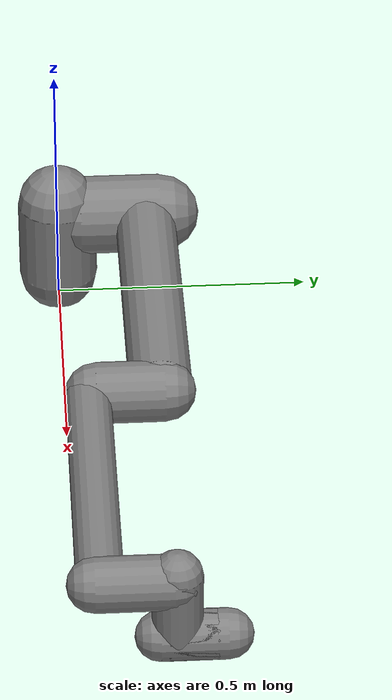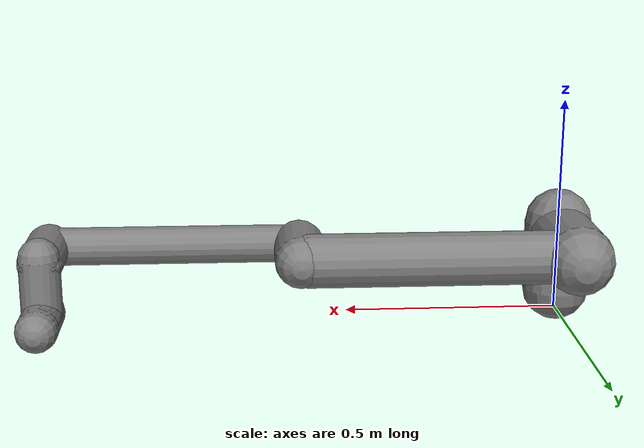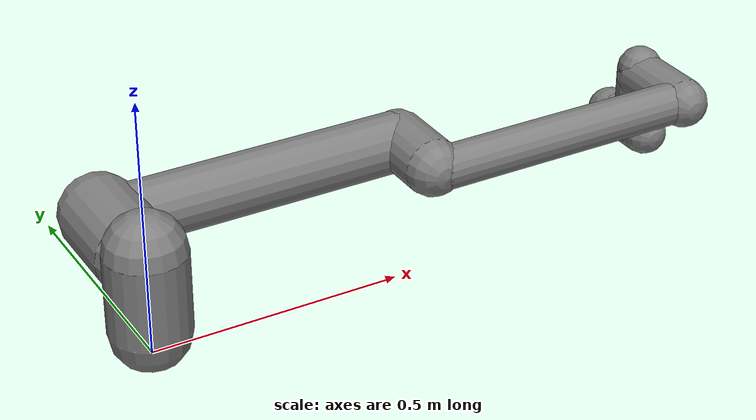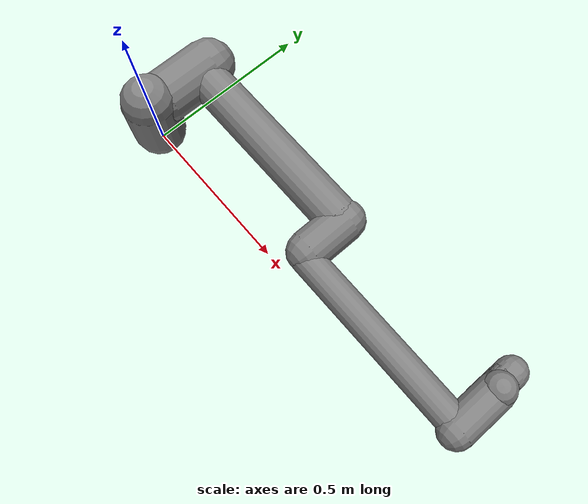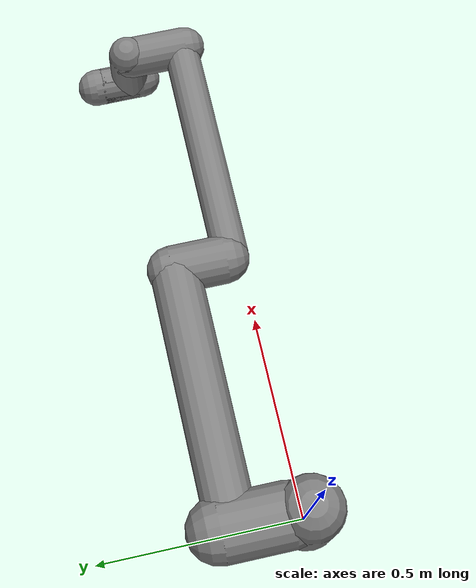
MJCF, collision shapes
<mujoco model="ur10e">
  <compiler angle="radian" eulerseq="xyz" meshdir="../universal_robots_ur10e/assets" autolimits="true"/>
  <option integrator="implicitfast"/>

  <!-- Default settings -->
  <default>
    <default class="ur10e">
      <material specular="0.5" shininess="0.25"/>
      <joint axis="0 1 0" range="-6.28319 6.28319" armature="0.1"/>
      <position ctrlrange="-6.2831 6.2831"/>
      <general biastype="affine" ctrlrange="-6.2831 6.2831" gainprm="5000" biasprm="0 -5000 -500"/>

      <default class="size4">
        <joint damping="10"/>
        <general forcerange="-330 330"/>
      </default>

      <default class="size3">
        <joint damping="5"/>
        <general forcerange="-150 150"/>
        <default class="size3_limited">
          <joint range="-3.1415 3.1415"/>
          <general ctrlrange="-3.1415 3.1415"/>
        </default>
      </default>

      <default class="size2">
        <joint damping="2"/>
        <general forcerange="-56 56"/>
      </default>

      <default class="visual">
        <geom type="mesh" contype="0" conaffinity="0" group="2"/>
      </default>

      <!-- Collision geometry -->
      <default class="collision">
        <geom type="capsule" group="3"/>
      </default>

      <!-- End-effector collision -->
      <default class="eef_collision">
        <geom type="capsule" group="3"/>
      </default>

      <site size="0.001" rgba="0.5 0.5 0.5 0.3" group="4"/>
    </default>
  </default>

  <asset>
    <material class="ur10e" name="black" rgba="0.033 0.033 0.033 1"/>
    <material class="ur10e" name="jointgray" rgba="0.278 0.278 0.278 1"/>
    <material class="ur10e" name="linkgray" rgba="0.82 0.82 0.82 1"/>
    <material class="ur10e" name="urblue" rgba="0.49 0.678 0.8 1"/>

    <!-- UR10 meshes -->
    <mesh file="base_0.obj"/>
    <mesh file="base_1.obj"/>
    <mesh file="shoulder_0.obj"/>
    <mesh file="shoulder_1.obj"/>
    <mesh file="shoulder_2.obj"/>
    <mesh file="upperarm_0.obj"/>
    <mesh file="upperarm_1.obj"/>
    <mesh file="upperarm_2.obj"/>
    <mesh file="upperarm_3.obj"/>
    <mesh file="forearm_0.obj"/>
    <mesh file="forearm_1.obj"/>
    <mesh file="forearm_2.obj"/>
    <mesh file="forearm_3.obj"/>
    <mesh file="wrist1_0.obj"/>
    <mesh file="wrist1_1.obj"/>
    <mesh file="wrist1_2.obj"/>
    <mesh file="wrist2_0.obj"/>
    <mesh file="wrist2_1.obj"/>
    <mesh file="wrist2_2.obj"/>
    <mesh file="wrist3.obj"/>
  </asset>

<!-- ================= UR10 Kinematic Chain ================= -->
  <worldbody>
    <light name="spotlight" mode="targetbodycom" target="wrist_2_link" pos="0 -1 2"/>

    <body name="base" childclass="ur10e">
      <inertial mass="4.0" pos="0 0 0" diaginertia="0.0061063308908 0.0061063308908 0.01125"/>
      <geom mesh="base_0" material="black" class="visual"/>
      <geom mesh="base_1" material="jointgray" class="visual"/>

      <!-- pos="0 0 0.181" means it is attached in Z-Axis relative to the Base center-->
      <body name="shoulder_link" pos="0 0 0.181">
        <inertial pos="0 1 0" mass="7.778" diaginertia="0.0314743 0.0314743 0.0218756"/>
        <joint name="shoulder_pan_joint" class="size4" axis="0 0 1"/>
        <geom mesh="shoulder_0" material="urblue" class="visual"/>
        <geom mesh="shoulder_1" material="black" class="visual"/>
        <geom mesh="shoulder_2" material="jointgray" class="visual"/>
        <geom class="collision" size="0.078 0.08" pos="0 0 -0.05"/>

        <body name="upper_arm_link" pos="0 0.176 0" quat="1 0 1 0">
          <inertial pos="0 0 0.3065" mass="12.93" diaginertia="0.423074 0.423074 0.0363656"/>
          <joint name="shoulder_lift_joint" class="size4"/>
          <geom mesh="upperarm_0" material="black" class="visual"/>
          <geom mesh="upperarm_1" material="jointgray" class="visual"/>
          <geom mesh="upperarm_2" material="urblue" class="visual"/>
          <geom mesh="upperarm_3" material="linkgray" class="visual"/>
          <geom class="collision" pos="0 -0.05 0" quat="1 1 0 0" size="0.078 0.08"/>
          <geom class="collision" size="0.06 0.3" pos="0 0 0.3"/>

          <body name="forearm_link" pos="0 -0.137 0.613">
            <inertial pos="0 0 0.2855" mass="3.87" diaginertia="0.11059 0.11059 0.0108844"/>
            <joint name="elbow_joint" class="size3_limited"/>
            <geom mesh="forearm_0" material="urblue" class="visual"/>
            <geom mesh="forearm_1" material="black" class="visual"/>
            <geom mesh="forearm_2" material="jointgray" class="visual"/>
            <geom mesh="forearm_3" material="linkgray" class="visual"/>
            <geom class="collision" pos="0 0.08 0" quat="1 1 0 0" size="0.058 0.065"/>
            <geom class="collision" size="0.043 0.28" pos="0 0 0.29"/>

            <body name="wrist_1_link" pos="0 0 0.571" quat="1 0 1 0">
              <inertial pos="0 0.135 0" quat="0.5 0.5 -0.5 0.5" mass="1.96"
                diaginertia="0.0055125 0.00510825 0.00510825"/>
              <joint name="wrist_1_joint" class="size2"/>
              <geom mesh="wrist1_0" material="black" class="visual"/>
              <geom mesh="wrist1_1" material="urblue" class="visual"/>
              <geom mesh="wrist1_2" material="jointgray" class="visual"/>
              <geom class="collision" pos="0 0.06 0" quat="1 1 0 0" size="0.05 0.07"/>

              <body name="wrist_2_link" pos="0 0.135 0">
                <inertial pos="0 0 0.12" quat="0.5 0.5 -0.5 0.5" mass="1.96"
                  diaginertia="0.0055125 0.00510825 0.00510825"/>
                <joint name="wrist_2_joint" axis="0 0 1" class="size2"/>
                <geom mesh="wrist2_0" material="black" class="visual"/>
                <geom mesh="wrist2_1" material="urblue" class="visual"/>
                <geom mesh="wrist2_2" material="jointgray" class="visual"/>
                <geom class="collision" size="0.046 0.065" pos="0 0 0.05"/>
                <geom class="collision" pos="0 0.028 0.12" quat="1 1 0 0" size="0.046 0.043"/>

                <body name="wrist_3_link" pos="0 0 0.12">
                  <inertial pos="0 0.092 0" quat="0 1 -1 0" mass="0.202"
                    diaginertia="0.000204525 0.000144346 0.000144346"/>
                  <joint name="wrist_3_joint" class="size2"/>
                  <geom material="linkgray" mesh="wrist3" class="visual"/>
                  <geom class="eef_collision" pos="0 0.03 0" quat="1 1 0 0" size="0.046 0.06"/>
                  <site name="attachment_site" pos="0 0.1 0" quat="-1 1 0 0"/>

                  <!-- TCP site at tool flange (matches menagerie attachment_site pos="0 0.1 0") -->
                  <site name="tcp" type="sphere" pos="0 0.1 0" quat="-1 1 0 0" rgba="0 1 0 1" size="0.005" group="0"/>
                </body>
              </body>
            </body>
          </body>
        </body>
      </body>
    </body>
  </worldbody>

  <actuator>
    <!-- Arm actuators (6-DOF only, gripper removed) -->
    <general class="size4" name="shoulder_pan" joint="shoulder_pan_joint"/>
    <general class="size4" name="shoulder_lift" joint="shoulder_lift_joint"/>
    <general class="size3_limited" name="elbow" joint="elbow_joint"/>
    <general class="size2" name="wrist_1" joint="wrist_1_joint"/>
    <general class="size2" name="wrist_2" joint="wrist_2_joint"/>
    <general class="size2" name="wrist_3" joint="wrist_3_joint"/>
  </actuator>

<keyframe>
  <key name="home"
    qpos="0 -1.5708 1.5708 -1.5708 -1.5708 0"
    ctrl="0 -1.5708 1.5708 -1.5708 -1.5708 0"/>

  <key name="vertical_home"
    qpos="0 -1.5708 0 -1.5708 0 0"
    ctrl="0 -1.5708 0 -1.5708 0 0"/>

</keyframe>
</mujoco>
